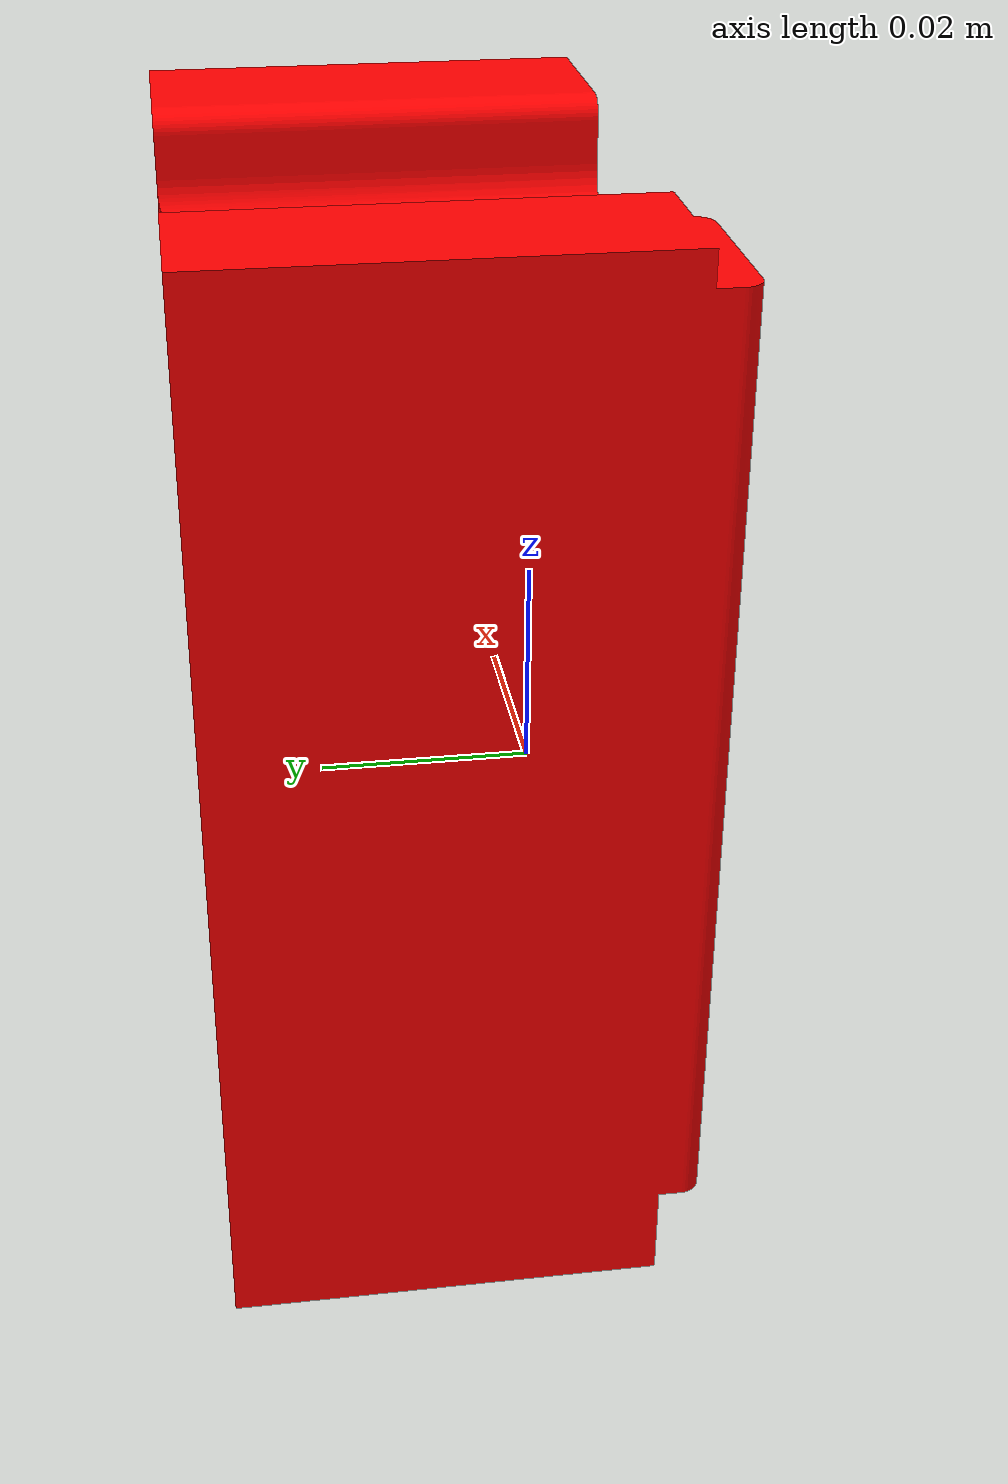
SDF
<?xml version="1.0" ?>
<sdf version="1.7">

  <model name="brick">
    <pose>0 0 0 0 0 0</pose>
    <static>false</static>
    <link name="link">
      <inertial>
        <mass>0.3</mass>
        <inertia>
          <ixx>0.00029</ixx>
          <ixy>0.0</ixy>
          <ixz>0.0</ixz>
          <iyx>0.0</iyx>
          <iyy>0.00034</iyy>
          <iyz>0.0</iyz>
          <izx>0.0</izx>
          <izy>0.0</izy>
          <izz>0.00013</izz>
        </inertia>
      </inertial>
      <collision name="collision">
        <pose>-0.03 -0.02 -0.05 0.0 0.0 0.0</pose>
        <geometry>
            <mesh>
                <scale>0.001 0.001 0.001</scale>
                <uri>model://brick/meshes/00_InterlockingBrick_Rev.00.STL</uri>
            </mesh>
        </geometry>
      </collision>
      <visual name="visual">
        <pose>-0.03 -0.02 -0.05 0.0 0.0 0.0</pose>
        <geometry>
            <mesh>
                <scale>0.001 0.001 0.001</scale>
                <uri>model://brick/meshes/00_InterlockingBrick_Rev.00.STL</uri>
            </mesh>
        </geometry>
        <material>
            <ambient>1.0 0.0 0.0 1.0</ambient>
            <diffuse>1.0 0.0 0.0 1.0</diffuse>
            <specular>1.0 0.0 0.0 1.0</specular>
        </material>
      </visual>
    </link>
  </model>
</sdf>
